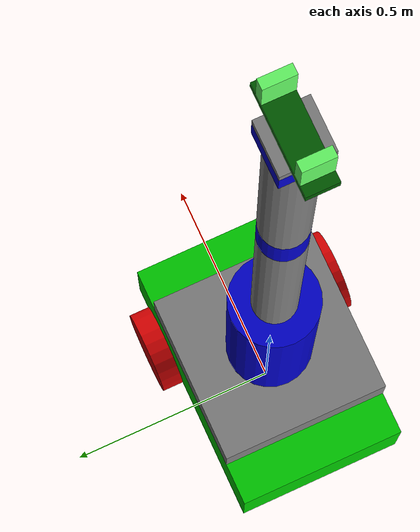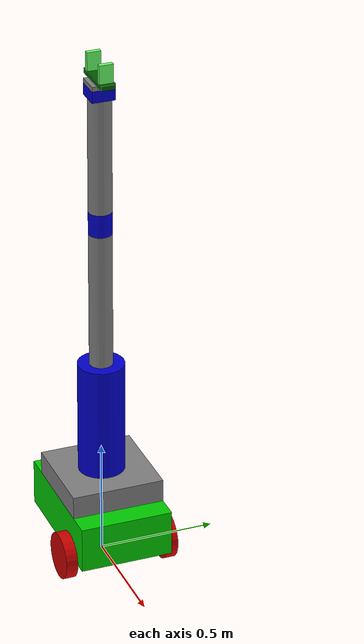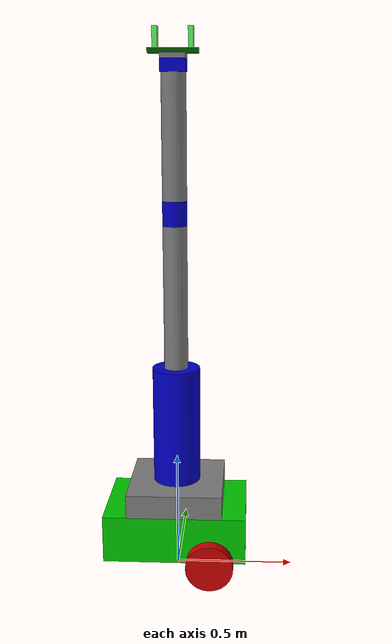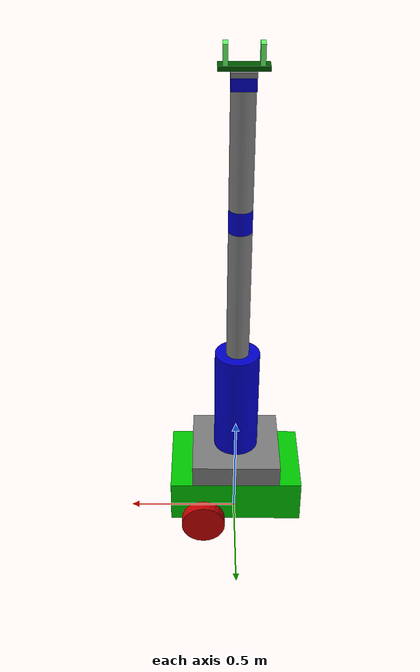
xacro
<?xml version="1.0" ?>
<robot name="growing_bot" xmlns:xacro="http://www.ros.org/wiki/xacro">

    <xacro:arg name="arm_enabled" default="true" />
    <xacro:arg name="detachable_joint" default="true" />

    <xacro:include filename="$(find growing_bot)/urdf/base.xacro" />

    <xacro:if value="$(arg arm_enabled)">
        <xacro:include filename="$(find growing_bot)/urdf/arm.xacro" />
        <xacro:include filename="$(find growing_bot)/urdf/gripper.xacro" />

        <joint name="arm_mount_joint" type="fixed">
            <parent link="base_link" />
            <child link="arm_base_link" />
            <origin xyz="0 0 ${base_height}" rpy="0 0 0" />
        </joint>

        <joint name="gripper_base_joint" type="fixed">
            <parent link="tool_link" />
            <child link="gripper_base_link" />
            <origin xyz="0 0 0" rpy="0 0 0" />
        </joint>
    </xacro:if>

    <xacro:if value="$(arg sim_gz)">
        <xacro:include filename="$(find growing_bot)/urdf/gz.xacro" />
    </xacro:if>

    <xacro:if value="$(arg sim_gazebo)">
        <xacro:include filename="$(find growing_bot)/urdf/gazebo.xacro" />
    </xacro:if>

</robot>

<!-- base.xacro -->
<robot xmlns:xacro="http://www.ros.org/wiki/xacro" name="growing_bot">

    <xacro:include filename="$(find growing_bot)/urdf/materials.xacro" />
    <xacro:include filename="$(find growing_bot)/urdf/macros.xacro" />

    <xacro:property name="base_length" value="0.6" />
    <xacro:property name="base_width" value="0.4" />
    <xacro:property name="base_height" value="0.2" />
    <xacro:property name="base_mass" value="20.0" />
    <xacro:property name="wheel_radius" value="0.1" />
    <xacro:property name="wheel_length" value="0.05" />
    <xacro:property name="camera_length" value="0.01" />
    <xacro:property name="camera_width" value="0.1" />
    <xacro:property name="camera_height" value="0.05" />
    <xacro:property name="camera_horizontal_fov" value="60" />

    <xacro:property name="two_d_lidar_height" value="0.06" />
    <xacro:property name="two_d_lidar_radius" value="0.075" />
    <xacro:property name="two_d_lidar_update_rate" value="30" />
    <xacro:property name="two_d_lidar_sample_size" value="361" />
    <xacro:property name="two_d_lidar_min_angle" value="0" />
    <xacro:property name="two_d_lidar_max_angle" value="360" />
    <xacro:property name="two_d_lidar_min_range" value="0.55" />
    <xacro:property name="two_d_lidar_max_range" value="16" />

    <xacro:arg name="robot_namespace" default=""/>
    <xacro:arg name="wheel_odom_topic" default="odom" />
    <xacro:arg name="camera_enabled" default="false" />
    <xacro:arg name="stereo_camera_enabled" default="false" />
    <xacro:arg name="two_d_lidar_enabled" default="false" />
    <xacro:arg name="publish_wheel_odom_tf" default="true" />
    <xacro:arg name="conveyor_enabled" default="false"/>
    <xacro:arg name="ground_truth_frame" default="map"/>
    <xacro:arg name="sim_gazebo" default="false" />
    <xacro:arg name="sim_ign" default="false" />
    <xacro:arg name="sim_gz" default="false" />
    <xacro:arg name="odometry_source" default="world" />
    <xacro:arg name="ros_control_enabled" default="false"/>

    <xacro:property name="odometry_source" value="$(arg odometry_source)"/>

    <link name="base_footprint" />

    <link name="base_link">
        <visual>
            <geometry>
                <box size="${base_length} ${base_width} ${base_height}" />
            </geometry>
            <material name="green" />
            <origin xyz="0 0 ${base_height/2}" rpy="0 0 0" />
        </visual>
        <collision>
            <geometry>
                <box size="${base_length} ${base_width} ${base_height}" />
            </geometry>
            <origin xyz="0 0 ${base_height/2}" rpy="0 0 0" />
        </collision>
        <inertial>
            <origin xyz="0 0 ${base_height/2}" rpy="0 0 0" />
            <mass value="${base_mass}" />
            <xacro:box_inertia m="${base_mass}" x="${base_length}" y="${base_width}" z="${base_height}" />
        </inertial>
    </link>

    <xacro:macro name="wheel_link" params="prefix">
        <link name="${prefix}_wheel_link">
            <visual>
                <geometry>
                    <cylinder radius="${wheel_radius}" length="${wheel_length}" />
                </geometry>
                <material name="red" />
                <origin xyz="0 0 0" rpy="${pi/2} 0 0" />
            </visual>
            <collision>
                <geometry>
                    <sphere radius="${wheel_radius}" />
                </geometry>
                <origin xyz="0 0 0" rpy="0 0 0" />
            </collision>
            <inertial>
                <origin xyz="0 0 0" rpy="${pi/2} 0 0" />
                <mass value="1.0" />
                <xacro:cylinder_inertia m="1.0" r="${wheel_radius}" h="${wheel_length}" />
            </inertial>
        </link>
    </xacro:macro>

    <xacro:wheel_link prefix="left" />
    <xacro:wheel_link prefix="right" />

    <link name="caster_link">
        <visual>
            <geometry>
                <sphere radius="${wheel_radius/2}" />
            </geometry>
            <material name="red" />
            <origin xyz="0 0 0" rpy="0 0 0" />
        </visual>
        <collision>
            <geometry>
                <sphere radius="${wheel_radius/2}" />
            </geometry>
            <origin xyz="0 0 0" rpy="0 0 0" />
        </collision>
        <inertial>
            <origin xyz="0 0 0" rpy="0 0 0" />
            <mass value="0.05" />
            <xacro:sphere_inertia m="0.05" r="${wheel_radius/2}" />
        </inertial>
    </link>

    <joint name="base_joint" type="fixed">
        <parent link="base_footprint" />
        <child link="base_link" />
        <origin xyz="0 0 ${wheel_radius}" rpy="0 0 0" />
    </joint>

    <joint name="base_left_joint" type="continuous">
        <parent link="base_link" />
        <child link="left_wheel_link" />
        <!-- Drive wheels at +x so cmd_vel +x (forward) leads; caster trails at rear -->
        <origin xyz="${base_length/4} ${base_width/2+wheel_length/2} 0" rpy="0 0 0" />
        <axis xyz="0 1 0" />
        <!-- Required so gazebo_ros2_control SetVelocity(0) can brake (fmax); else freewheel creep -->
        <limit effort="20.0" velocity="10.0" />
    </joint>

    <joint name="base_right_joint" type="continuous">
        <parent link="base_link" />
        <child link="right_wheel_link" />
        <origin xyz="${base_length/4} ${-(base_width/2+wheel_length/2)} 0" rpy="0 0 0" />
        <axis xyz="0 1 0" />
        <limit effort="20.0" velocity="10.0" />
    </joint>

    <joint name="base_caster_joint" type="fixed">
        <parent link="base_link" />
        <child link="caster_link" />
        <origin xyz="${-(base_length/2-wheel_radius)} 0 ${-wheel_radius/2}" rpy="0 0 0" />
    </joint>

    <!-- 2D LIDAR -->
    <xacro:if value="$(arg two_d_lidar_enabled)">
        <link name="two_d_lidar">
            <visual>
                <origin xyz="0 0 0" rpy="0 0 0" />
                <geometry>
                    <cylinder length="${two_d_lidar_height}" radius="${two_d_lidar_radius}" />
                </geometry>
                <material name="aluminium" />
            </visual>
            <collision>
                <origin xyz="0 0 0" rpy="0 0 0" />
                <geometry>
                    <cylinder length="${two_d_lidar_height}" radius="${two_d_lidar_radius}" />
                </geometry>
            </collision>
            <inertial>
                <origin xyz="0 0 0" rpy="0 0 0" />
                <mass value="0.1" />
                <xacro:cylinder_inertia m="0.1" r="${two_d_lidar_radius}" h="${two_d_lidar_height}" />
            </inertial>
        </link>

        <joint name="two_d_lidar_joint" type="fixed">
            <parent link="base_link" />
            <child link="two_d_lidar" />
            <origin xyz="0 0 ${base_height + two_d_lidar_height/2}" rpy="0 0 0" />
        </joint>
    </xacro:if>

    <!-- IMU -->
    <link name="imu_frame" />

    <joint name="imu_joint" type="fixed">
        <parent link="base_link" />
        <child link="imu_frame" />
        <origin xyz="0 0 ${base_height}" rpy="0 0 0" />
    </joint>

    <!-- CAMERA -->
    <xacro:if value="$(arg camera_enabled)">
        <link name="kinect_camera">
            <visual>
                <origin xyz="0 0 0" rpy="0 0 0" />
                <geometry>
                    <box size="${camera_length} ${camera_width} ${camera_height}" />
                </geometry>
                <material name="red" />
            </visual>
            <collision>
                <origin xyz="0 0 0" rpy="0 0 0" />
                <geometry>
                    <box size="${camera_length} ${camera_width} ${camera_height}" />
                </geometry>
            </collision>
            <inertial>
                <origin xyz="0 0 0" rpy="0 0 0" />
                <mass value="0.1" />
                <xacro:box_inertia m="0.1" x="${camera_length}" y="${camera_width}" z="${camera_height}" />
            </inertial>
        </link>

        <joint name="kinect_camera_joint" type="fixed">
            <parent link="base_link" />
            <child link="kinect_camera" />
            <origin xyz="${base_length/2 + camera_length/2} 0 ${base_height/2}" rpy="0 0 0" />
        </joint>

        <link name="kinect_camera_optical" />

        <joint name="kinect_camera_optical_joint" type="fixed">
            <parent link="kinect_camera" />
            <child link="kinect_camera_optical" />
            <origin xyz="0 0 0" rpy="${-pi/2} 0 ${-pi/2}" />
        </joint>
    </xacro:if>

    <!-- STEREO CAMERA -->
    <xacro:if value="$(arg stereo_camera_enabled)">
        <link name="stereo_camera">
            <visual>
                <origin xyz="0 0 0" rpy="0 0 0" />
                <geometry>
                    <box size="${camera_length} ${camera_width} ${camera_height}" />
                </geometry>
                <material name="red" />
            </visual>
            <collision>
                <origin xyz="0 0 0" rpy="0 0 0" />
                <geometry>
                    <box size="${camera_length} ${camera_width} ${camera_height}" />
                </geometry>
            </collision>
            <inertial>
                <origin xyz="0 0 0" rpy="0 0 0" />
                <mass value="0.1" />
                <xacro:box_inertia m="0.1" x="${camera_length}" y="${camera_width}" z="${camera_height}" />
            </inertial>
        </link>

        <joint name="stereo_camera_joint" type="fixed">
            <parent link="base_link" />
            <child link="stereo_camera" />
            <origin xyz="${base_length/2 + camera_length/2} 0 ${base_height/2}" rpy="0 0 0" />
        </joint>

        <link name="stereo_camera_optical" />

        <joint name="stereo_camera_optical_joint" type="fixed">
            <parent link="stereo_camera" />
            <child link="stereo_camera_optical" />
            <origin xyz="0 0 0" rpy="${-pi/2} 0 ${-pi/2}" />
        </joint>
    </xacro:if>

    <!-- ROS CONTROL -->
    <xacro:if value="$(arg ros_control_enabled)">
        <xacro:include filename="$(find growing_bot)/urdf/ros_control.xacro" />
    </xacro:if>

</robot>

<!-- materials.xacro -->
<robot xmlns:xacro="http://www.ros.org/wiki/xacro" name="growing_bot">

    <material name="black">
        <color rgba="0.0 0.0 0.0 1.0"/>
    </material>

    <material name="blue">
        <color rgba="0.0 0.0 0.8 1.0"/>
    </material>

    <material name="Blue">
        <color rgba="0.0 0.0 0.8 1.0"/>
    </material>

    <material name="Gray">
        <color rgba="0.5 0.5 0.5 1.0"/>
    </material>

    <material name="green">
        <color rgba="0.0 0.8 0.0 1.0"/>
    </material>

    <material name="dark_green">
        <color rgba="0.0 0.35 0.0 1.0"/>
    </material>

    <material name="light_green">
        <color rgba="0.4 1.0 0.4 1.0"/>
    </material>

    <material name="yellow">
        <color rgba="1.0 1.0 0.0 1.0"/>
    </material>

    <material name="dark_grey">
        <color rgba="0.2 0.2 0.2 1.0"/>
    </material>

    <material name="orange">
        <color rgba="${255/255} ${108/255} ${10/255} 1.0"/>
    </material>

    <material name="brown">
        <color rgba="${139/255} ${69/255} ${19/255} 1.0"/>
    </material>

    <material name="red">
        <color rgba="0.8 0.0 0.0 1.0"/>
    </material>

    <material name="turquoise">
        <color rgba="${64/255} ${224/255} ${208/255} 1.0"/>
    </material>

    <material name="purple">
        <color rgba="${128/255} ${0/255} ${128/255} 1.0"/>
    </material>

    <material name="white">
        <color rgba="1.0 1.0 1.0 1.0"/>
    </material>

    <material name="aluminium">
        <color rgba="0.5 0.5 0.5 1"/>
    </material>

    <material name="plastic">
        <color rgba="0.1 0.1 0.1 1"/>
    </material>

</robot>

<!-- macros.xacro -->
<robot xmlns:xacro="http://www.ros.org/wiki/xacro" name="growing_bot">

    <!--................................ INERTIA MATRICES .............................. -->

    <xacro:macro name="cylinder_inertia" params="m r h">
        <inertia ixx="${m * (3 * r * r + h * h) / 12}" ixy="0" ixz="0" iyy="${m * (3 * r * r + h * h) / 12}" iyz="0" izz="${m * r * r / 2}" />
    </xacro:macro>

    <xacro:macro name="box_inertia" params="m x y z">
        <inertia ixx="${m * (y * y + z * z) / 12}" ixy="0" ixz="0" iyy="${m * (x * x + z * z) / 12}" iyz="0" izz="${m * (y * y + x * x) / 12}" />
    </xacro:macro>

    <xacro:macro name="sphere_inertia" params="m r">
        <inertia ixx="${2 * m * r * r / 5}" ixy="0" ixz="0" iyy="${2 * m * r * r / 5}" iyz="0" izz="${2 * m * r * r / 5}" />
    </xacro:macro>

</robot>

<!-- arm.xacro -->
<robot xmlns:xacro="http://www.ros.org/xacro">

    <xacro:include filename="$(find growing_bot)/urdf/macros.xacro" />

    <!-- arm base -->
    <xacro:property name="arm_base_length" value="0.4" />
    <xacro:property name="arm_base_width" value="0.4" />
    <xacro:property name="arm_base_height" value="0.1" />
    <xacro:property name="arm_base_mass" value="2.0" />

    <!-- shoulder -->
    <xacro:property name="shoulder_length" value="0.5" />
    <xacro:property name="shoulder_radius" value="0.1" />
    <xacro:property name="shoulder_mass" value="1.5" />

    <!-- upper arm -->
    <xacro:property name="arm_length" value="0.6" />
    <xacro:property name="arm_radius" value="0.05" />
    <xacro:property name="arm_mass" value="1.0" />

    <!-- elbow -->
    <xacro:property name="elbow_length" value="0.1" />
    <xacro:property name="elbow_radius" value="0.05" />
    <xacro:property name="elbow_mass" value="0.3" />

    <!-- forearm -->
    <xacro:property name="forearm_length" value="0.5" />
    <xacro:property name="forearm_radius" value="0.05" />
    <xacro:property name="forearm_mass" value="0.8" />

    <!-- wrist -->
    <xacro:property name="wrist_length" value="0.1" />
    <xacro:property name="wrist_width" value="0.1" />
    <xacro:property name="wrist_height" value="0.05" />
    <xacro:property name="wrist_mass" value="0.2" />

    <!-- hand -->
    <xacro:property name="hand_length" value="0.1" />
    <xacro:property name="hand_width" value="0.1" />
    <xacro:property name="hand_height" value="0.02" />
    <xacro:property name="hand_mass" value="0.1" />

    <!-- joint limits / dynamics -->
    <xacro:property name="arm_joint_effort" value="1000" />
    <xacro:property name="arm_joint_velocity" value="1.0" />
    <xacro:property name="wrist_joint_effort" value="100" />
    <xacro:property name="wrist_joint_velocity" value="1.57" />
    <xacro:property name="arm_joint_damping" value="0.5" />
    <xacro:property name="arm_joint_friction" value="0.1" />

    <link name="arm_base_link">
        <visual>
            <geometry>
                <box size="${arm_base_length} ${arm_base_width} ${arm_base_height}" />
            </geometry>
            <material name="Gray" />
            <origin xyz="0 0 ${arm_base_height/2}" rpy="0 0 0" />
        </visual>
        <collision>
            <geometry>
                <box size="${arm_base_length} ${arm_base_width} ${arm_base_height}" />
            </geometry>
            <origin xyz="0 0 ${arm_base_height/2}" rpy="0 0 0" />
        </collision>
        <inertial>
            <origin xyz="0 0 ${arm_base_height/2}" rpy="0 0 0" />
            <mass value="${arm_base_mass}" />
            <xacro:box_inertia m="${arm_base_mass}" x="${arm_base_length}" y="${arm_base_width}" z="${arm_base_height}" />
        </inertial>
    </link>

    <link name="shoulder_link">
        <visual>
            <geometry>
                <cylinder length="${shoulder_length}" radius="${shoulder_radius}" />
            </geometry>
            <material name="Blue" />
            <origin xyz="0 0 ${shoulder_length/2}" rpy="0 0 0" />
        </visual>
        <collision>
            <geometry>
                <box size="${shoulder_radius} ${shoulder_radius} ${shoulder_length}" />
            </geometry>
            <origin xyz="0 0 ${shoulder_length/2}" rpy="0 0 0" />
        </collision>
        <inertial>
            <origin xyz="0 0 ${shoulder_length/2}" rpy="0 0 0" />
            <mass value="${shoulder_mass}" />
            <xacro:cylinder_inertia m="${shoulder_mass}" r="${shoulder_radius}" h="${shoulder_length}" />
        </inertial>
    </link>

    <link name="arm_link">
        <visual>
            <geometry>
                <cylinder length="${arm_length}" radius="${arm_radius}" />
            </geometry>
            <material name="Gray" />
            <origin xyz="0 0 ${arm_length/2}" rpy="0 0 0" />
        </visual>
        <collision>
            <geometry>
                <box size="${arm_radius} ${arm_radius} ${arm_length}" />
            </geometry>
            <origin xyz="0 0 ${arm_length/2}" rpy="0 0 0" />
        </collision>
        <inertial>
            <origin xyz="0 0 ${arm_length/2}" rpy="0 0 0" />
            <mass value="${arm_mass}" />
            <xacro:cylinder_inertia m="${arm_mass}" r="${arm_radius}" h="${arm_length}" />
        </inertial>
    </link>

    <link name="elbow_link">
        <visual>
            <geometry>
                <cylinder length="${elbow_length}" radius="${elbow_radius}" />
            </geometry>
            <material name="Blue" />
            <origin xyz="0 0 ${elbow_length/2}" rpy="0 0 0" />
        </visual>
        <collision>
            <geometry>
                <box size="${elbow_radius} ${elbow_radius} ${elbow_length}" />
            </geometry>
            <origin xyz="0 0 ${elbow_length/2}" rpy="0 0 0" />
        </collision>
        <inertial>
            <origin xyz="0 0 ${elbow_length/2}" rpy="0 0 0" />
            <mass value="${elbow_mass}" />
            <xacro:cylinder_inertia m="${elbow_mass}" r="${elbow_radius}" h="${elbow_length}" />
        </inertial>
    </link>

    <link name="forearm_link">
        <visual>
            <geometry>
                <cylinder length="${forearm_length}" radius="${forearm_radius}" />
            </geometry>
            <material name="Gray" />
            <origin xyz="0 0 ${forearm_length/2}" rpy="0 0 0" />
        </visual>
        <collision>
            <geometry>
                <box size="${forearm_radius} ${forearm_radius} ${forearm_length}" />
            </geometry>
            <origin xyz="0 0 ${forearm_length/2}" rpy="0 0 0" />
        </collision>
        <inertial>
            <origin xyz="0 0 ${forearm_length/2}" rpy="0 0 0" />
            <mass value="${forearm_mass}" />
            <xacro:cylinder_inertia m="${forearm_mass}" r="${forearm_radius}" h="${forearm_length}" />
        </inertial>
    </link>

    <link name="wrist_link">
        <visual>
            <geometry>
                <box size="${wrist_length} ${wrist_width} ${wrist_height}" />
            </geometry>
            <material name="Blue" />
            <origin xyz="0 0 ${wrist_height/2}" rpy="0 0 0" />
        </visual>
        <collision>
            <geometry>
                <box size="${wrist_length} ${wrist_width} ${wrist_height}" />
            </geometry>
            <origin xyz="0 0 ${wrist_height/2}" rpy="0 0 0" />
        </collision>
        <inertial>
            <origin xyz="0 0 ${wrist_height/2}" rpy="0 0 0" />
            <mass value="${wrist_mass}" />
            <xacro:box_inertia m="${wrist_mass}" x="${wrist_length}" y="${wrist_width}" z="${wrist_height}" />
        </inertial>
    </link>

    <link name="hand_link">
        <visual>
            <geometry>
                <box size="${hand_length} ${hand_width} ${hand_height}" />
            </geometry>
            <material name="Gray" />
            <origin xyz="0 0 ${hand_height/2}" rpy="0 0 0" />
        </visual>
        <collision>
            <geometry>
                <box size="${hand_length} ${hand_width} ${hand_height}" />
            </geometry>
            <origin xyz="0 0 ${hand_height/2}" rpy="0 0 0" />
        </collision>
        <inertial>
            <origin xyz="0 0 ${hand_height/2}" rpy="0 0 0" />
            <mass value="${hand_mass}" />
            <xacro:box_inertia m="${hand_mass}" x="${hand_length}" y="${hand_width}" z="${hand_height}" />
        </inertial>
    </link>

    <link name="tool_link" />

    <joint name="joint1" type="revolute">
        <parent link="arm_base_link" />
        <child link="shoulder_link" />
        <origin xyz="0 0 ${arm_base_height}" rpy="0 0 0" />
        <axis xyz="0 0 1" />
        <limit effort="${arm_joint_effort}" velocity="${arm_joint_velocity}" lower="-3.14" upper="3.14" />
        <dynamics damping="${arm_joint_damping}" friction="${arm_joint_friction}" />
    </joint>

    <joint name="joint2" type="revolute">
        <parent link="shoulder_link" />
        <child link="arm_link" />
        <origin xyz="0 0 ${shoulder_length}" rpy="0 0 0" />
        <axis xyz="0 1 0" />
        <!-- lower slightly below 0: Gazebo/ros2_control rest pose can be ~-1e-12 -->
        <limit effort="${arm_joint_effort}" velocity="${arm_joint_velocity}" lower="-0.01" upper="2.5" />
        <dynamics damping="${arm_joint_damping}" friction="${arm_joint_friction}" />
    </joint>

    <joint name="joint3" type="revolute">
        <parent link="arm_link" />
        <child link="elbow_link" />
        <origin xyz="0 0 ${arm_length}" rpy="0 0 0" />
        <axis xyz="0 1 0" />
        <limit effort="${arm_joint_effort}" velocity="${arm_joint_velocity}" lower="-0.01" upper="2.5" />
        <dynamics damping="${arm_joint_damping}" friction="${arm_joint_friction}" />
    </joint>

    <joint name="joint4" type="revolute">
        <parent link="elbow_link" />
        <child link="forearm_link" />
        <origin xyz="0 0 ${elbow_length}" rpy="0 0 0" />
        <axis xyz="0 1 0" />
        <limit effort="${wrist_joint_effort}" velocity="${wrist_joint_velocity}" lower="-3.14" upper="3.14" />
        <dynamics damping="${arm_joint_damping}" friction="${arm_joint_friction}" />
    </joint>

    <joint name="joint5" type="revolute">
        <parent link="forearm_link" />
        <child link="wrist_link" />
        <origin xyz="0 0 ${forearm_length}" rpy="0 0 0" />
        <axis xyz="0 1 0" />
        <limit effort="${wrist_joint_effort}" velocity="${wrist_joint_velocity}" lower="-1.57" upper="1.57" />
        <dynamics damping="${arm_joint_damping}" friction="${arm_joint_friction}" />
    </joint>

    <joint name="joint6" type="continuous">
        <parent link="wrist_link" />
        <child link="hand_link" />
        <origin xyz="0 0 ${wrist_height}" rpy="0 0 0" />
        <axis xyz="0 0 1" />
        <!-- velocity required: Jazzy JTC on_init reads limits->velocity (null => segfault) -->
        <limit effort="${wrist_joint_effort}" velocity="${wrist_joint_velocity}" />
        <dynamics damping="${arm_joint_damping}" friction="${arm_joint_friction}" />
    </joint>

    <joint name="hand_tool_joint" type="fixed">
        <parent link="hand_link" />
        <child link="tool_link" />
        <origin xyz="0 0 ${hand_height}" rpy="0 0 0" />
    </joint>

</robot>

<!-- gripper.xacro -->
<robot xmlns:xacro="http://www.ros.org/xacro">

    <xacro:include filename="$(find growing_bot)/urdf/macros.xacro" />

    <xacro:property name="gripper_base_mass" value="0.2" />
    <xacro:property name="gripper_finger_mass" value="0.05" />

    <link name="gripper_base_link">
        <visual>
            <geometry>
                <box size="0.2 0.06 0.02" />
            </geometry>
            <material name="dark_green" />
            <origin xyz="0 0 0.01" rpy="0 0 0" />
        </visual>
        <collision>
            <geometry>
                <box size="0.2 0.06 0.02" />
            </geometry>
            <origin xyz="0 0 0.01" rpy="0 0 0" />
        </collision>
        <inertial>
            <origin xyz="0 0 0.01" rpy="0 0 0" />
            <mass value="${gripper_base_mass}" />
            <xacro:box_inertia m="${gripper_base_mass}" x="0.2" y="0.06" z="0.02" />
        </inertial>
    </link>

    <link name="gripper_left_finger_link">
        <visual>
            <geometry>
                <box size="0.02 0.06 0.08" />
            </geometry>
            <material name="light_green" />
            <origin xyz="0 0 0.04" rpy="0 0 0" />
        </visual>
        <collision>
            <geometry>
                <box size="0.02 0.06 0.08" />
            </geometry>
            <origin xyz="0 0 0.04" rpy="0 0 0" />
        </collision>
        <inertial>
            <origin xyz="0 0 0.04" rpy="0 0 0" />
            <mass value="${gripper_finger_mass}" />
            <xacro:box_inertia m="${gripper_finger_mass}" x="0.02" y="0.06" z="0.08" />
        </inertial>
    </link>

    <link name="gripper_right_finger_link">
        <visual>
            <geometry>
                <box size="0.02 0.06 0.08" />
            </geometry>
            <material name="light_green" />
            <origin xyz="0 0 0.04" rpy="0 0 0" />
        </visual>
        <collision>
            <geometry>
                <box size="0.02 0.06 0.08" />
            </geometry>
            <origin xyz="0 0 0.04" rpy="0 0 0" />
        </collision>
        <inertial>
            <origin xyz="0 0 0.04" rpy="0 0 0" />
            <mass value="${gripper_finger_mass}" />
            <xacro:box_inertia m="${gripper_finger_mass}" x="0.02" y="0.06" z="0.08" />
        </inertial>
    </link>

    <joint name="gripper_left_finger_joint" type="prismatic">
        <parent link="gripper_base_link" />
        <child link="gripper_left_finger_link" />
        <origin xyz="-0.07 0 0.02" rpy="0 0 0" />
        <axis xyz="1 0 0" />
        <!-- lower slightly below 0: sim rest pose can be ~-1e-16 -->
        <limit effort="1000.0" velocity="1.0" lower="-0.001" upper="0.06" />
        <dynamics damping="0.2" friction="0.1" />
    </joint>

    <joint name="gripper_right_finger_joint" type="prismatic">
        <parent link="gripper_base_link" />
        <child link="gripper_right_finger_link" />
        <origin xyz="0.07 0 0.02" rpy="0 0 0" />
        <axis xyz="1 0 0" />
        <limit effort="1000.0" velocity="1.0" lower="-0.06" upper="0.001" />
        <dynamics damping="0.2" friction="0.1" />
    </joint>

</robot>
